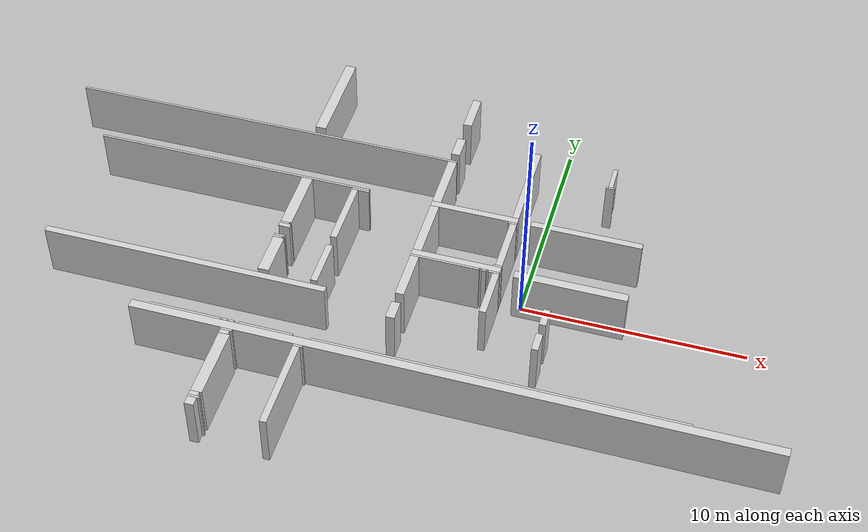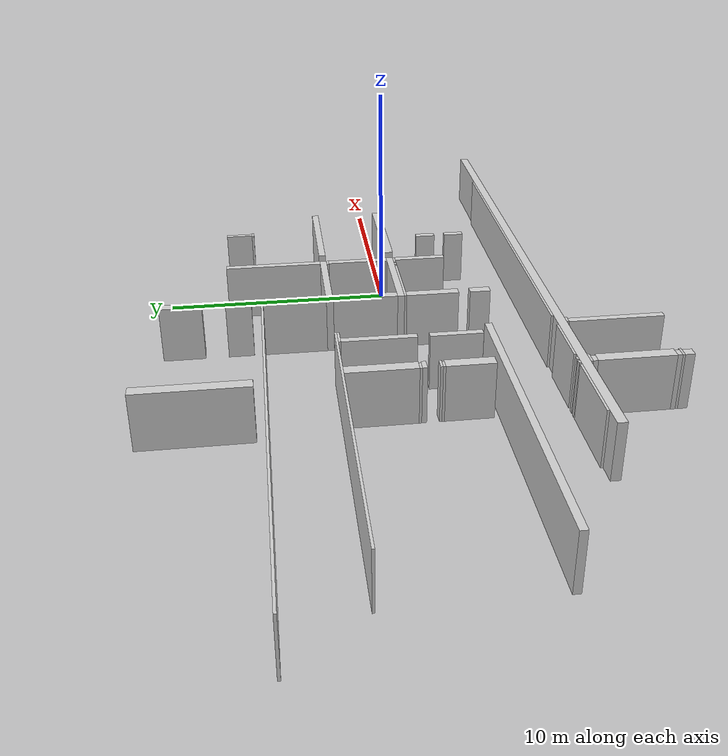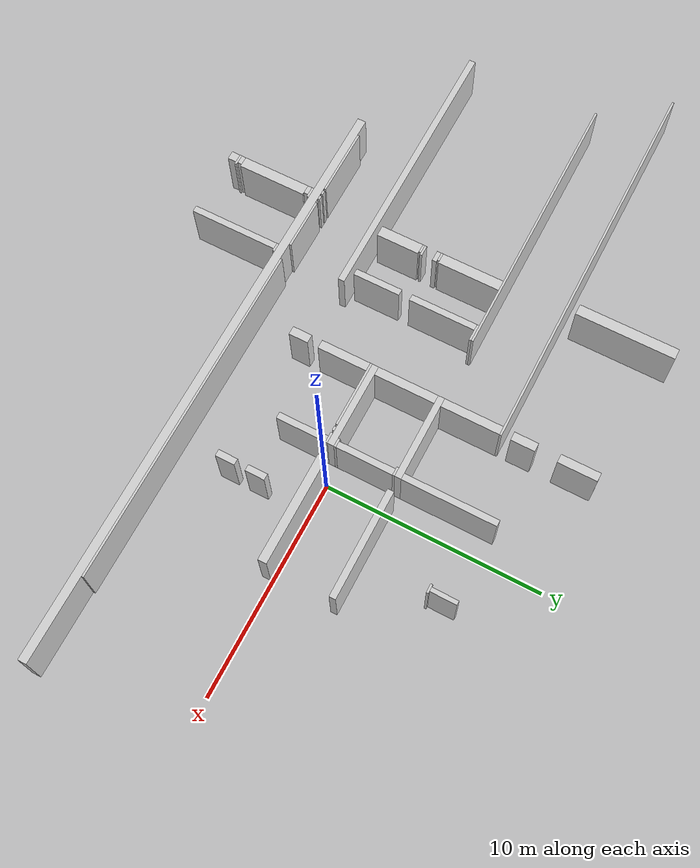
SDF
<sdf version="1.8">
 <model name="campus_first_floor">
  <static>true</static>
  <link name="wall_20">
   <pose>-4.75000 9.20000 1.25000 0 0 0</pose>
   <collision name="collision"><geometry><box><size>0.40000 1.80000 2.50000</size></box></geometry></collision>
   <visual name="visual">
    <geometry><box><size>0.40000 1.80000 2.50000</size></box></geometry>
    <material>
     <ambient>0.72 0.72 0.72 1</ambient>
     <diffuse>0.82 0.82 0.82 1</diffuse>
     <specular>0.05 0.05 0.05 1</specular>
    </material>
   </visual>
  </link>
  <link name="wall_33">
   <pose>-11.30000 8.50000 1.25000 0 0 0</pose>
   <collision name="collision"><geometry><box><size>0.50000 4.60000 2.50000</size></box></geometry></collision>
   <visual name="visual">
    <geometry><box><size>0.50000 4.60000 2.50000</size></box></geometry>
    <material>
     <ambient>0.72 0.72 0.72 1</ambient>
     <diffuse>0.82 0.82 0.82 1</diffuse>
     <specular>0.05 0.05 0.05 1</specular>
    </material>
   </visual>
  </link>
  <link name="wall_36">
   <pose>-4.75000 6.75000 1.25000 0 0 0</pose>
   <collision name="collision"><geometry><box><size>0.40000 1.10000 2.50000</size></box></geometry></collision>
   <visual name="visual">
    <geometry><box><size>0.40000 1.10000 2.50000</size></box></geometry>
    <material>
     <ambient>0.72 0.72 0.72 1</ambient>
     <diffuse>0.82 0.82 0.82 1</diffuse>
     <specular>0.05 0.05 0.05 1</specular>
    </material>
   </visual>
  </link>
  <link name="wall_40">
   <pose>2.55000 6.70000 1.25000 0 0 0</pose>
   <collision name="collision"><geometry><box><size>0.20000 1.20000 2.50000</size></box></geometry></collision>
   <visual name="visual">
    <geometry><box><size>0.20000 1.20000 2.50000</size></box></geometry>
    <material>
     <ambient>0.72 0.72 0.72 1</ambient>
     <diffuse>0.82 0.82 0.82 1</diffuse>
     <specular>0.05 0.05 0.05 1</specular>
    </material>
   </visual>
  </link>
  <link name="wall_43">
   <pose>2.55000 6.05000 1.25000 0 0 0</pose>
   <collision name="collision"><geometry><box><size>0.40000 0.10000 2.50000</size></box></geometry></collision>
   <visual name="visual">
    <geometry><box><size>0.40000 0.10000 2.50000</size></box></geometry>
    <material>
     <ambient>0.72 0.72 0.72 1</ambient>
     <diffuse>0.82 0.82 0.82 1</diffuse>
     <specular>0.05 0.05 0.05 1</specular>
    </material>
   </visual>
  </link>
  <link name="wall_47">
   <pose>-13.80000 5.75000 1.25000 0 0 0</pose>
   <collision name="collision"><geometry><box><size>18.50000 0.10000 2.50000</size></box></geometry></collision>
   <visual name="visual">
    <geometry><box><size>18.50000 0.10000 2.50000</size></box></geometry>
    <material>
     <ambient>0.72 0.72 0.72 1</ambient>
     <diffuse>0.82 0.82 0.82 1</diffuse>
     <specular>0.05 0.05 0.05 1</specular>
    </material>
   </visual>
  </link>
  <link name="wall_87">
   <pose>-1.10000 5.15000 1.25000 0 0 0</pose>
   <collision name="collision"><geometry><box><size>0.30000 4.30000 2.50000</size></box></geometry></collision>
   <visual name="visual">
    <geometry><box><size>0.30000 4.30000 2.50000</size></box></geometry>
    <material>
     <ambient>0.72 0.72 0.72 1</ambient>
     <diffuse>0.82 0.82 0.82 1</diffuse>
     <specular>0.05 0.05 0.05 1</specular>
    </material>
   </visual>
  </link>
  <link name="wall_89">
   <pose>-4.75000 4.35000 1.25000 0 0 0</pose>
   <collision name="collision"><geometry><box><size>0.40000 2.70000 2.50000</size></box></geometry></collision>
   <visual name="visual">
    <geometry><box><size>0.40000 2.70000 2.50000</size></box></geometry>
    <material>
     <ambient>0.72 0.72 0.72 1</ambient>
     <diffuse>0.82 0.82 0.82 1</diffuse>
     <specular>0.05 0.05 0.05 1</specular>
    </material>
   </visual>
  </link>
  <link name="wall_92">
   <pose>-14.35000 2.85000 1.25000 0 0 0</pose>
   <collision name="collision"><geometry><box><size>13.00000 0.10000 2.50000</size></box></geometry></collision>
   <visual name="visual">
    <geometry><box><size>13.00000 0.10000 2.50000</size></box></geometry>
    <material>
     <ambient>0.72 0.72 0.72 1</ambient>
     <diffuse>0.82 0.82 0.82 1</diffuse>
     <specular>0.05 0.05 0.05 1</specular>
    </material>
   </visual>
  </link>
  <link name="wall_95">
   <pose>-2.95000 2.85000 1.25000 0 0 0</pose>
   <collision name="collision"><geometry><box><size>4.00000 0.30000 2.50000</size></box></geometry></collision>
   <visual name="visual">
    <geometry><box><size>4.00000 0.30000 2.50000</size></box></geometry>
    <material>
     <ambient>0.72 0.72 0.72 1</ambient>
     <diffuse>0.82 0.82 0.82 1</diffuse>
     <specular>0.05 0.05 0.05 1</specular>
    </material>
   </visual>
  </link>
  <link name="wall_96">
   <pose>-8.25000 2.75000 1.25000 0 0 0</pose>
   <collision name="collision"><geometry><box><size>0.80000 0.10000 2.50000</size></box></geometry></collision>
   <visual name="visual">
    <geometry><box><size>0.80000 0.10000 2.50000</size></box></geometry>
    <material>
     <ambient>0.72 0.72 0.72 1</ambient>
     <diffuse>0.82 0.82 0.82 1</diffuse>
     <specular>0.05 0.05 0.05 1</specular>
    </material>
   </visual>
  </link>
  <link name="wall_97">
   <pose>2.15000 2.85000 1.25000 0 0 0</pose>
   <collision name="collision"><geometry><box><size>5.00000 0.30000 2.50000</size></box></geometry></collision>
   <visual name="visual">
    <geometry><box><size>5.00000 0.30000 2.50000</size></box></geometry>
    <material>
     <ambient>0.72 0.72 0.72 1</ambient>
     <diffuse>0.82 0.82 0.82 1</diffuse>
     <specular>0.05 0.05 0.05 1</specular>
    </material>
   </visual>
  </link>
  <link name="wall_98">
   <pose>-1.15000 2.65000 1.25000 0 0 0</pose>
   <collision name="collision"><geometry><box><size>0.40000 0.10000 2.50000</size></box></geometry></collision>
   <visual name="visual">
    <geometry><box><size>0.40000 0.10000 2.50000</size></box></geometry>
    <material>
     <ambient>0.72 0.72 0.72 1</ambient>
     <diffuse>0.82 0.82 0.82 1</diffuse>
     <specular>0.05 0.05 0.05 1</specular>
    </material>
   </visual>
  </link>
  <link name="wall_152">
   <pose>-1.10000 1.30000 1.25000 0 0 0</pose>
   <collision name="collision"><geometry><box><size>0.30000 2.60000 2.50000</size></box></geometry></collision>
   <visual name="visual">
    <geometry><box><size>0.30000 2.60000 2.50000</size></box></geometry>
    <material>
     <ambient>0.72 0.72 0.72 1</ambient>
     <diffuse>0.82 0.82 0.82 1</diffuse>
     <specular>0.05 0.05 0.05 1</specular>
    </material>
   </visual>
  </link>
  <link name="wall_157">
   <pose>-10.80000 1.35000 1.25000 0 0 0</pose>
   <collision name="collision"><geometry><box><size>0.50000 2.90000 2.50000</size></box></geometry></collision>
   <visual name="visual">
    <geometry><box><size>0.50000 2.90000 2.50000</size></box></geometry>
    <material>
     <ambient>0.72 0.72 0.72 1</ambient>
     <diffuse>0.82 0.82 0.82 1</diffuse>
     <specular>0.05 0.05 0.05 1</specular>
    </material>
   </visual>
  </link>
  <link name="wall_160">
   <pose>-4.75000 1.30000 1.25000 0 0 0</pose>
   <collision name="collision"><geometry><box><size>0.40000 2.80000 2.50000</size></box></geometry></collision>
   <visual name="visual">
    <geometry><box><size>0.40000 2.80000 2.50000</size></box></geometry>
    <material>
     <ambient>0.72 0.72 0.72 1</ambient>
     <diffuse>0.82 0.82 0.82 1</diffuse>
     <specular>0.05 0.05 0.05 1</specular>
    </material>
   </visual>
  </link>
  <link name="wall_161">
   <pose>-1.15000 -0.05000 1.25000 0 0 0</pose>
   <collision name="collision"><geometry><box><size>0.40000 0.10000 2.50000</size></box></geometry></collision>
   <visual name="visual">
    <geometry><box><size>0.40000 0.10000 2.50000</size></box></geometry>
    <material>
     <ambient>0.72 0.72 0.72 1</ambient>
     <diffuse>0.82 0.82 0.82 1</diffuse>
     <specular>0.05 0.05 0.05 1</specular>
    </material>
   </visual>
  </link>
  <link name="wall_169">
   <pose>-10.85000 -0.15000 1.25000 0 0 0</pose>
   <collision name="collision"><geometry><box><size>0.40000 0.10000 2.50000</size></box></geometry></collision>
   <visual name="visual">
    <geometry><box><size>0.40000 0.10000 2.50000</size></box></geometry>
    <material>
     <ambient>0.72 0.72 0.72 1</ambient>
     <diffuse>0.82 0.82 0.82 1</diffuse>
     <specular>0.05 0.05 0.05 1</specular>
    </material>
   </visual>
  </link>
  <link name="wall_181">
   <pose>-10.80000 -0.30000 1.25000 0 0 0</pose>
   <collision name="collision"><geometry><box><size>0.50000 0.20000 2.50000</size></box></geometry></collision>
   <visual name="visual">
    <geometry><box><size>0.50000 0.20000 2.50000</size></box></geometry>
    <material>
     <ambient>0.72 0.72 0.72 1</ambient>
     <diffuse>0.82 0.82 0.82 1</diffuse>
     <specular>0.05 0.05 0.05 1</specular>
    </material>
   </visual>
  </link>
  <link name="wall_182">
   <pose>-2.95000 -0.25000 1.25000 0 0 0</pose>
   <collision name="collision"><geometry><box><size>4.00000 0.30000 2.50000</size></box></geometry></collision>
   <visual name="visual">
    <geometry><box><size>4.00000 0.30000 2.50000</size></box></geometry>
    <material>
     <ambient>0.72 0.72 0.72 1</ambient>
     <diffuse>0.82 0.82 0.82 1</diffuse>
     <specular>0.05 0.05 0.05 1</specular>
    </material>
   </visual>
  </link>
  <link name="wall_184">
   <pose>-8.50000 1.15000 1.25000 0 0 0</pose>
   <collision name="collision"><geometry><box><size>0.30000 3.10000 2.50000</size></box></geometry></collision>
   <visual name="visual">
    <geometry><box><size>0.30000 3.10000 2.50000</size></box></geometry>
    <material>
     <ambient>0.72 0.72 0.72 1</ambient>
     <diffuse>0.82 0.82 0.82 1</diffuse>
     <specular>0.05 0.05 0.05 1</specular>
    </material>
   </visual>
  </link>
  <link name="wall_187">
   <pose>-1.65000 -0.45000 1.25000 0 0 0</pose>
   <collision name="collision"><geometry><box><size>0.20000 0.10000 2.50000</size></box></geometry></collision>
   <visual name="visual">
    <geometry><box><size>0.20000 0.10000 2.50000</size></box></geometry>
    <material>
     <ambient>0.72 0.72 0.72 1</ambient>
     <diffuse>0.82 0.82 0.82 1</diffuse>
     <specular>0.05 0.05 0.05 1</specular>
    </material>
   </visual>
  </link>
  <link name="wall_188">
   <pose>-1.20000 -0.45000 1.25000 0 0 0</pose>
   <collision name="collision"><geometry><box><size>0.50000 0.10000 2.50000</size></box></geometry></collision>
   <visual name="visual">
    <geometry><box><size>0.50000 0.10000 2.50000</size></box></geometry>
    <material>
     <ambient>0.72 0.72 0.72 1</ambient>
     <diffuse>0.82 0.82 0.82 1</diffuse>
     <specular>0.05 0.05 0.05 1</specular>
    </material>
   </visual>
  </link>
  <link name="wall_189">
   <pose>-3.40000 -0.45000 1.25000 0 0 0</pose>
   <collision name="collision"><geometry><box><size>3.10000 0.10000 2.50000</size></box></geometry></collision>
   <visual name="visual">
    <geometry><box><size>3.10000 0.10000 2.50000</size></box></geometry>
    <material>
     <ambient>0.72 0.72 0.72 1</ambient>
     <diffuse>0.82 0.82 0.82 1</diffuse>
     <specular>0.05 0.05 0.05 1</specular>
    </material>
   </visual>
  </link>
  <link name="wall_191">
   <pose>2.15000 -0.30000 1.25000 0 0 0</pose>
   <collision name="collision"><geometry><box><size>5.00000 0.40000 2.50000</size></box></geometry></collision>
   <visual name="visual">
    <geometry><box><size>5.00000 0.40000 2.50000</size></box></geometry>
    <material>
     <ambient>0.72 0.72 0.72 1</ambient>
     <diffuse>0.82 0.82 0.82 1</diffuse>
     <specular>0.05 0.05 0.05 1</specular>
    </material>
   </visual>
  </link>
  <link name="wall_204">
   <pose>-10.80000 -0.95000 1.25000 0 0 0</pose>
   <collision name="collision"><geometry><box><size>0.50000 0.10000 2.50000</size></box></geometry></collision>
   <visual name="visual">
    <geometry><box><size>0.50000 0.10000 2.50000</size></box></geometry>
    <material>
     <ambient>0.72 0.72 0.72 1</ambient>
     <diffuse>0.82 0.82 0.82 1</diffuse>
     <specular>0.05 0.05 0.05 1</specular>
    </material>
   </visual>
  </link>
  <link name="wall_207">
   <pose>-10.85000 -1.05000 1.25000 0 0 0</pose>
   <collision name="collision"><geometry><box><size>0.40000 0.10000 2.50000</size></box></geometry></collision>
   <visual name="visual">
    <geometry><box><size>0.40000 0.10000 2.50000</size></box></geometry>
    <material>
     <ambient>0.72 0.72 0.72 1</ambient>
     <diffuse>0.82 0.82 0.82 1</diffuse>
     <specular>0.05 0.05 0.05 1</specular>
    </material>
   </visual>
  </link>
  <link name="wall_245">
   <pose>1.50000 -2.35000 1.25000 0 0 0</pose>
   <collision name="collision"><geometry><box><size>0.30000 0.90000 2.50000</size></box></geometry></collision>
   <visual name="visual">
    <geometry><box><size>0.30000 0.90000 2.50000</size></box></geometry>
    <material>
     <ambient>0.72 0.72 0.72 1</ambient>
     <diffuse>0.82 0.82 0.82 1</diffuse>
     <specular>0.05 0.05 0.05 1</specular>
    </material>
   </visual>
  </link>
  <link name="wall_247">
   <pose>-1.10000 -1.65000 1.25000 0 0 0</pose>
   <collision name="collision"><geometry><box><size>0.30000 2.30000 2.50000</size></box></geometry></collision>
   <visual name="visual">
    <geometry><box><size>0.30000 2.30000 2.50000</size></box></geometry>
    <material>
     <ambient>0.72 0.72 0.72 1</ambient>
     <diffuse>0.82 0.82 0.82 1</diffuse>
     <specular>0.05 0.05 0.05 1</specular>
    </material>
   </visual>
  </link>
  <link name="wall_248">
   <pose>-4.75000 -1.65000 1.25000 0 0 0</pose>
   <collision name="collision"><geometry><box><size>0.40000 2.30000 2.50000</size></box></geometry></collision>
   <visual name="visual">
    <geometry><box><size>0.40000 2.30000 2.50000</size></box></geometry>
    <material>
     <ambient>0.72 0.72 0.72 1</ambient>
     <diffuse>0.82 0.82 0.82 1</diffuse>
     <specular>0.05 0.05 0.05 1</specular>
    </material>
   </visual>
  </link>
  <link name="wall_256">
   <pose>-10.80000 -2.10000 1.25000 0 0 0</pose>
   <collision name="collision"><geometry><box><size>0.50000 2.00000 2.50000</size></box></geometry></collision>
   <visual name="visual">
    <geometry><box><size>0.50000 2.00000 2.50000</size></box></geometry>
    <material>
     <ambient>0.72 0.72 0.72 1</ambient>
     <diffuse>0.82 0.82 0.82 1</diffuse>
     <specular>0.05 0.05 0.05 1</specular>
    </material>
   </visual>
  </link>
  <link name="wall_257">
   <pose>-8.50000 -2.00000 1.25000 0 0 0</pose>
   <collision name="collision"><geometry><box><size>0.30000 2.20000 2.50000</size></box></geometry></collision>
   <visual name="visual">
    <geometry><box><size>0.30000 2.20000 2.50000</size></box></geometry>
    <material>
     <ambient>0.72 0.72 0.72 1</ambient>
     <diffuse>0.82 0.82 0.82 1</diffuse>
     <specular>0.05 0.05 0.05 1</specular>
    </material>
   </visual>
  </link>
  <link name="wall_265">
   <pose>-14.35000 -3.45000 1.25000 0 0 0</pose>
   <collision name="collision"><geometry><box><size>13.00000 0.30000 2.50000</size></box></geometry></collision>
   <visual name="visual">
    <geometry><box><size>13.00000 0.30000 2.50000</size></box></geometry>
    <material>
     <ambient>0.72 0.72 0.72 1</ambient>
     <diffuse>0.82 0.82 0.82 1</diffuse>
     <specular>0.05 0.05 0.05 1</specular>
    </material>
   </visual>
  </link>
  <link name="wall_278">
   <pose>1.50000 -3.75000 1.25000 0 0 0</pose>
   <collision name="collision"><geometry><box><size>0.30000 0.90000 2.50000</size></box></geometry></collision>
   <visual name="visual">
    <geometry><box><size>0.30000 0.90000 2.50000</size></box></geometry>
    <material>
     <ambient>0.72 0.72 0.72 1</ambient>
     <diffuse>0.82 0.82 0.82 1</diffuse>
     <specular>0.05 0.05 0.05 1</specular>
    </material>
   </visual>
  </link>
  <link name="wall_284">
   <pose>-4.75000 -3.75000 1.25000 0 0 0</pose>
   <collision name="collision"><geometry><box><size>0.40000 0.90000 2.50000</size></box></geometry></collision>
   <visual name="visual">
    <geometry><box><size>0.40000 0.90000 2.50000</size></box></geometry>
    <material>
     <ambient>0.72 0.72 0.72 1</ambient>
     <diffuse>0.82 0.82 0.82 1</diffuse>
     <specular>0.05 0.05 0.05 1</specular>
    </material>
   </visual>
  </link>
  <link name="wall_315">
   <pose>-13.15000 -6.25000 1.25000 0 0 0</pose>
   <collision name="collision"><geometry><box><size>3.20000 0.10000 2.50000</size></box></geometry></collision>
   <visual name="visual">
    <geometry><box><size>3.20000 0.10000 2.50000</size></box></geometry>
    <material>
     <ambient>0.72 0.72 0.72 1</ambient>
     <diffuse>0.82 0.82 0.82 1</diffuse>
     <specular>0.05 0.05 0.05 1</specular>
    </material>
   </visual>
  </link>
  <link name="wall_316">
   <pose>-11.35000 -6.25000 1.25000 0 0 0</pose>
   <collision name="collision"><geometry><box><size>0.20000 0.10000 2.50000</size></box></geometry></collision>
   <visual name="visual">
    <geometry><box><size>0.20000 0.10000 2.50000</size></box></geometry>
    <material>
     <ambient>0.72 0.72 0.72 1</ambient>
     <diffuse>0.82 0.82 0.82 1</diffuse>
     <specular>0.05 0.05 0.05 1</specular>
    </material>
   </visual>
  </link>
  <link name="wall_317">
   <pose>0.45000 -6.25000 1.25000 0 0 0</pose>
   <collision name="collision"><geometry><box><size>16.00000 0.10000 2.50000</size></box></geometry></collision>
   <visual name="visual">
    <geometry><box><size>16.00000 0.10000 2.50000</size></box></geometry>
    <material>
     <ambient>0.72 0.72 0.72 1</ambient>
     <diffuse>0.82 0.82 0.82 1</diffuse>
     <specular>0.05 0.05 0.05 1</specular>
    </material>
   </visual>
  </link>
  <link name="wall_318">
   <pose>-9.55000 -6.25000 1.25000 0 0 0</pose>
   <collision name="collision"><geometry><box><size>2.40000 0.10000 2.50000</size></box></geometry></collision>
   <visual name="visual">
    <geometry><box><size>2.40000 0.10000 2.50000</size></box></geometry>
    <material>
     <ambient>0.72 0.72 0.72 1</ambient>
     <diffuse>0.82 0.82 0.82 1</diffuse>
     <specular>0.05 0.05 0.05 1</specular>
    </material>
   </visual>
  </link>
  <link name="wall_321">
   <pose>-11.05000 -6.25000 1.25000 0 0 0</pose>
   <collision name="collision"><geometry><box><size>0.20000 0.10000 2.50000</size></box></geometry></collision>
   <visual name="visual">
    <geometry><box><size>0.20000 0.10000 2.50000</size></box></geometry>
    <material>
     <ambient>0.72 0.72 0.72 1</ambient>
     <diffuse>0.82 0.82 0.82 1</diffuse>
     <specular>0.05 0.05 0.05 1</specular>
    </material>
   </visual>
  </link>
  <link name="wall_330">
   <pose>-1.60000 -6.50000 1.25000 0 0 0</pose>
   <collision name="collision"><geometry><box><size>27.90000 0.40000 2.50000</size></box></geometry></collision>
   <visual name="visual">
    <geometry><box><size>27.90000 0.40000 2.50000</size></box></geometry>
    <material>
     <ambient>0.72 0.72 0.72 1</ambient>
     <diffuse>0.82 0.82 0.82 1</diffuse>
     <specular>0.05 0.05 0.05 1</specular>
    </material>
   </visual>
  </link>
  <link name="wall_334">
   <pose>-7.95000 -6.75000 1.25000 0 0 0</pose>
   <collision name="collision"><geometry><box><size>0.40000 0.10000 2.50000</size></box></geometry></collision>
   <visual name="visual">
    <geometry><box><size>0.40000 0.10000 2.50000</size></box></geometry>
    <material>
     <ambient>0.72 0.72 0.72 1</ambient>
     <diffuse>0.82 0.82 0.82 1</diffuse>
     <specular>0.05 0.05 0.05 1</specular>
    </material>
   </visual>
  </link>
  <link name="wall_336">
   <pose>-11.10000 -6.75000 1.25000 0 0 0</pose>
   <collision name="collision"><geometry><box><size>0.50000 0.10000 2.50000</size></box></geometry></collision>
   <visual name="visual">
    <geometry><box><size>0.50000 0.10000 2.50000</size></box></geometry>
    <material>
     <ambient>0.72 0.72 0.72 1</ambient>
     <diffuse>0.82 0.82 0.82 1</diffuse>
     <specular>0.05 0.05 0.05 1</specular>
    </material>
   </visual>
  </link>
  <link name="wall_344">
   <pose>-11.15000 -6.90000 1.25000 0 0 0</pose>
   <collision name="collision"><geometry><box><size>0.40000 0.20000 2.50000</size></box></geometry></collision>
   <visual name="visual">
    <geometry><box><size>0.40000 0.20000 2.50000</size></box></geometry>
    <material>
     <ambient>0.72 0.72 0.72 1</ambient>
     <diffuse>0.82 0.82 0.82 1</diffuse>
     <specular>0.05 0.05 0.05 1</specular>
    </material>
   </visual>
  </link>
  <link name="wall_362">
   <pose>-11.10000 -8.60000 1.25000 0 0 0</pose>
   <collision name="collision"><geometry><box><size>0.50000 3.20000 2.50000</size></box></geometry></collision>
   <visual name="visual">
    <geometry><box><size>0.50000 3.20000 2.50000</size></box></geometry>
    <material>
     <ambient>0.72 0.72 0.72 1</ambient>
     <diffuse>0.82 0.82 0.82 1</diffuse>
     <specular>0.05 0.05 0.05 1</specular>
    </material>
   </visual>
  </link>
  <link name="wall_366">
   <pose>-11.15000 -10.30000 1.25000 0 0 0</pose>
   <collision name="collision"><geometry><box><size>0.40000 0.20000 2.50000</size></box></geometry></collision>
   <visual name="visual">
    <geometry><box><size>0.40000 0.20000 2.50000</size></box></geometry>
    <material>
     <ambient>0.72 0.72 0.72 1</ambient>
     <diffuse>0.82 0.82 0.82 1</diffuse>
     <specular>0.05 0.05 0.05 1</specular>
    </material>
   </visual>
  </link>
  <link name="wall_368">
   <pose>-11.10000 -10.45000 1.25000 0 0 0</pose>
   <collision name="collision"><geometry><box><size>0.50000 0.10000 2.50000</size></box></geometry></collision>
   <visual name="visual">
    <geometry><box><size>0.50000 0.10000 2.50000</size></box></geometry>
    <material>
     <ambient>0.72 0.72 0.72 1</ambient>
     <diffuse>0.82 0.82 0.82 1</diffuse>
     <specular>0.05 0.05 0.05 1</specular>
    </material>
   </visual>
  </link>
  <link name="wall_387">
   <pose>-8.00000 -8.85000 1.25000 0 0 0</pose>
   <collision name="collision"><geometry><box><size>0.30000 4.10000 2.50000</size></box></geometry></collision>
   <visual name="visual">
    <geometry><box><size>0.30000 4.10000 2.50000</size></box></geometry>
    <material>
     <ambient>0.72 0.72 0.72 1</ambient>
     <diffuse>0.82 0.82 0.82 1</diffuse>
     <specular>0.05 0.05 0.05 1</specular>
    </material>
   </visual>
  </link>
  <link name="wall_388">
   <pose>-11.15000 -10.70000 1.25000 0 0 0</pose>
   <collision name="collision"><geometry><box><size>0.40000 0.40000 2.50000</size></box></geometry></collision>
   <visual name="visual">
    <geometry><box><size>0.40000 0.40000 2.50000</size></box></geometry>
    <material>
     <ambient>0.72 0.72 0.72 1</ambient>
     <diffuse>0.82 0.82 0.82 1</diffuse>
     <specular>0.05 0.05 0.05 1</specular>
    </material>
   </visual>
  </link>
 </model>
</sdf>
